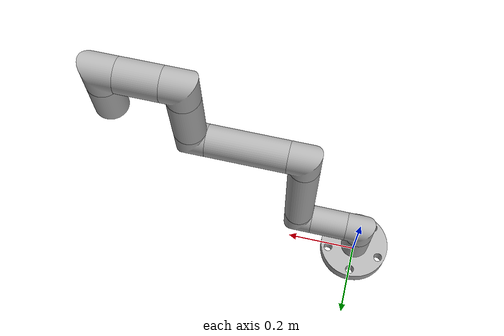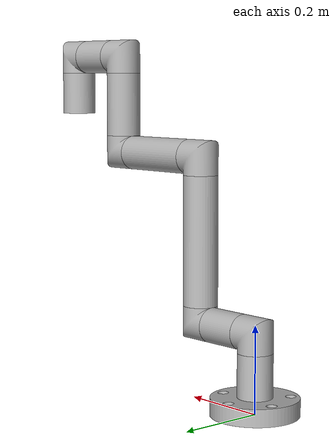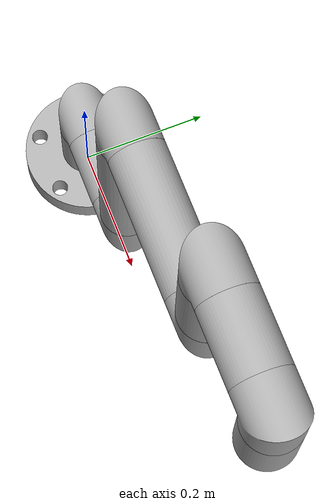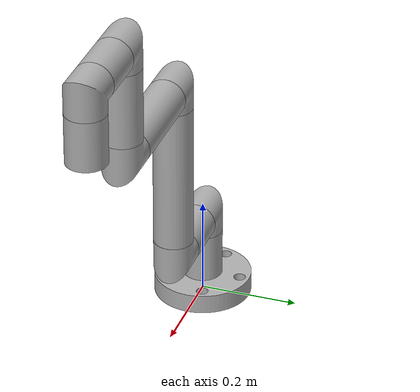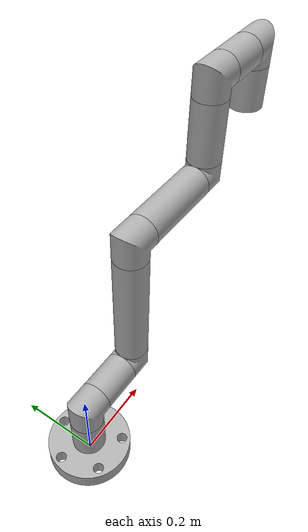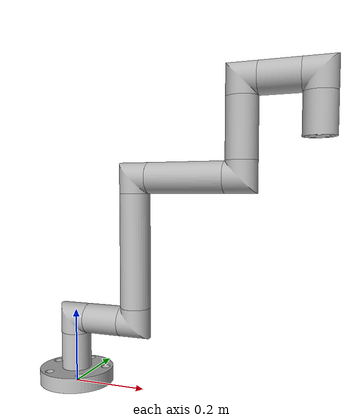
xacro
<?xml version="1.0" ?>
<robot name="Proyecto_robot" xmlns:xacro="http://www.ros.org/wiki/xacro">

<xacro:include filename="$(find Proyecto_robot_description)/urdf/materials.xacro" />
<xacro:include filename="$(find Proyecto_robot_description)/urdf/Proyecto_robot.trans" />
<xacro:include filename="$(find Proyecto_robot_description)/urdf/Proyecto_robot.gazebo" />
  <!-- Used for fixing robot to Gazebo 'base_link' -->
  <link name="world"/>

  <joint name="fixed" type="fixed">
    <parent link="world"/>
    <child link="base_link"/>
  </joint>-->
<link name="base_link">
  <inertial>
    <origin rpy="0 0 0" xyz="0 0 0"/>
    <mass value="7.515592835274655"/>
    <inertia ixx="0.022536" ixy="-0.0" ixz="0.0" iyy="0.022536" iyz="-0.0" izz="0.043068"/>
  </inertial>
  <visual>
    <origin rpy="0 0 0" xyz="0 0 0"/>
    <geometry>
      <mesh filename="package://Proyecto_robot_description/meshes/base_link.stl" scale="0.001 0.001 0.001"/>
    </geometry>
    <material name="silver"/>
  </visual>
  <collision>
    <origin rpy="0 0 0" xyz="0 0 0"/>
    <geometry>
      <mesh filename="package://Proyecto_robot_description/meshes/base_link.stl" scale="0.001 0.001 0.001"/>
    </geometry>
  </collision>
</link>

<link name="Component14_1">
  <inertial>
    <origin rpy="0 0 0" xyz="6.822320486321587e-13 -3.193731681911223e-11 -0.04919483100108901"/>
    <mass value="3.876479897603745"/>
    <inertia ixx="0.004691" ixy="-0.0" ixz="-0.0" iyy="0.004691" iyz="0.0" izz="0.003092"/>
  </inertial>
  <visual>
    <origin rpy="0 0 0" xyz="-0.64 0.0 -0.75"/>
    <geometry>
      <mesh filename="package://Proyecto_robot_description/meshes/Component14_1.stl" scale="0.001 0.001 0.001"/>
    </geometry>
    <material name="silver"/>
  </visual>
  <collision>
    <origin rpy="0 0 0" xyz="-0.64 0.0 -0.75"/>
    <geometry>
      <mesh filename="package://Proyecto_robot_description/meshes/Component14_1.stl" scale="0.001 0.001 0.001"/>
    </geometry>
  </collision>
</link>

<link name="Component13_1">
  <inertial>
    <origin rpy="0 0 0" xyz="0.03749999998098341 -1.2166751014171874e-10 -0.002499999953929466"/>
    <mass value="3.156672298327024"/>
    <inertia ixx="0.002716" ixy="-0.0" ixz="2e-05" iyy="0.002907" iyz="0.0" izz="0.002716"/>
  </inertial>
  <visual>
    <origin rpy="0 0 0" xyz="-0.6 0.0 -0.79"/>
    <geometry>
      <mesh filename="package://Proyecto_robot_description/meshes/Component13_1.stl" scale="0.001 0.001 0.001"/>
    </geometry>
    <material name="silver"/>
  </visual>
  <collision>
    <origin rpy="0 0 0" xyz="-0.6 0.0 -0.79"/>
    <geometry>
      <mesh filename="package://Proyecto_robot_description/meshes/Component13_1.stl" scale="0.001 0.001 0.001"/>
    </geometry>
  </collision>
</link>

<link name="Component12_1">
  <inertial>
    <origin rpy="0 0 0" xyz="0.04999999998096316 -1.2203037810843445e-10 4.535805064875831e-11"/>
    <mass value="3.9458403729087896"/>
    <inertia ixx="0.003157" ixy="0.0" ixz="-0.0" iyy="0.004867" iyz="0.0" izz="0.004867"/>
  </inertial>
  <visual>
    <origin rpy="0 0 0" xyz="-0.5 0.0 -0.79"/>
    <geometry>
      <mesh filename="package://Proyecto_robot_description/meshes/Component12_1.stl" scale="0.001 0.001 0.001"/>
    </geometry>
    <material name="silver"/>
  </visual>
  <collision>
    <origin rpy="0 0 0" xyz="-0.5 0.0 -0.79"/>
    <geometry>
      <mesh filename="package://Proyecto_robot_description/meshes/Component12_1.stl" scale="0.001 0.001 0.001"/>
    </geometry>
  </collision>
</link>

<link name="Component11_1">
  <inertial>
    <origin rpy="0 0 0" xyz="0.002499999980983769 -1.2166705952994858e-10 0.037500000044644266"/>
    <mass value="3.156672298327024"/>
    <inertia ixx="0.002716" ixy="0.0" ixz="-2e-05" iyy="0.002907" iyz="0.0" izz="0.002716"/>
  </inertial>
  <visual>
    <origin rpy="0 0 0" xyz="-0.46 0.0 -0.75"/>
    <geometry>
      <mesh filename="package://Proyecto_robot_description/meshes/Component11_1.stl" scale="0.001 0.001 0.001"/>
    </geometry>
    <material name="silver"/>
  </visual>
  <collision>
    <origin rpy="0 0 0" xyz="-0.46 0.0 -0.75"/>
    <geometry>
      <mesh filename="package://Proyecto_robot_description/meshes/Component11_1.stl" scale="0.001 0.001 0.001"/>
    </geometry>
  </collision>
</link>

<link name="Component10_1">
  <inertial>
    <origin rpy="0 0 0" xyz="-1.8099299836649152e-11 -1.0531080358510585e-10 0.07500000004462448"/>
    <mass value="5.91876055936317"/>
    <inertia ixx="0.013465" ixy="0.0" ixz="0.0" iyy="0.013465" iyz="0.0" izz="0.004735"/>
  </inertial>
  <visual>
    <origin rpy="0 0 0" xyz="-0.46 0.0 -0.6"/>
    <geometry>
      <mesh filename="package://Proyecto_robot_description/meshes/Component10_1.stl" scale="0.001 0.001 0.001"/>
    </geometry>
    <material name="silver"/>
  </visual>
  <collision>
    <origin rpy="0 0 0" xyz="-0.46 0.0 -0.6"/>
    <geometry>
      <mesh filename="package://Proyecto_robot_description/meshes/Component10_1.stl" scale="0.001 0.001 0.001"/>
    </geometry>
  </collision>
</link>

<link name="Component9_1">
  <inertial>
    <origin rpy="0 0 0" xyz="0.037499999982817334 -8.895458316739984e-11 0.002500000044603823"/>
    <mass value="3.156672298327025"/>
    <inertia ixx="0.002716" ixy="0.0" ixz="-2e-05" iyy="0.002907" iyz="0.0" izz="0.002716"/>
  </inertial>
  <visual>
    <origin rpy="0 0 0" xyz="-0.42 0.0 -0.56"/>
    <geometry>
      <mesh filename="package://Proyecto_robot_description/meshes/Component9_1.stl" scale="0.001 0.001 0.001"/>
    </geometry>
    <material name="silver"/>
  </visual>
  <collision>
    <origin rpy="0 0 0" xyz="-0.42 0.0 -0.56"/>
    <geometry>
      <mesh filename="package://Proyecto_robot_description/meshes/Component9_1.stl" scale="0.001 0.001 0.001"/>
    </geometry>
  </collision>
</link>

<link name="Component8_1">
  <inertial>
    <origin rpy="0 0 0" xyz="0.09999999998283796 -8.859130186327942e-11 4.3483106004771344e-11"/>
    <mass value="7.891680745817552"/>
    <inertia ixx="0.006313" ixy="-0.0" ixz="-0.0" iyy="0.029462" iyz="0.0" izz="0.029462"/>
  </inertial>
  <visual>
    <origin rpy="0 0 0" xyz="-0.22 0.0 -0.56"/>
    <geometry>
      <mesh filename="package://Proyecto_robot_description/meshes/Component8_1.stl" scale="0.001 0.001 0.001"/>
    </geometry>
    <material name="silver"/>
  </visual>
  <collision>
    <origin rpy="0 0 0" xyz="-0.22 0.0 -0.56"/>
    <geometry>
      <mesh filename="package://Proyecto_robot_description/meshes/Component8_1.stl" scale="0.001 0.001 0.001"/>
    </geometry>
  </collision>
</link>

<link name="Component7_1">
  <inertial>
    <origin rpy="0 0 0" xyz="0.002499999982223222 -8.829804254666008e-11 0.0375000000425737"/>
    <mass value="3.1566722983270235"/>
    <inertia ixx="0.002716" ixy="0.0" ixz="-2e-05" iyy="0.002907" iyz="0.0" izz="0.002716"/>
  </inertial>
  <visual>
    <origin rpy="0 0 0" xyz="-0.18 -0.0 -0.52"/>
    <geometry>
      <mesh filename="package://Proyecto_robot_description/meshes/Component7_1.stl" scale="0.001 0.001 0.001"/>
    </geometry>
    <material name="silver"/>
  </visual>
  <collision>
    <origin rpy="0 0 0" xyz="-0.18 -0.0 -0.52"/>
    <geometry>
      <mesh filename="package://Proyecto_robot_description/meshes/Component7_1.stl" scale="0.001 0.001 0.001"/>
    </geometry>
  </collision>
</link>

<link name="Component6_1">
  <inertial>
    <origin rpy="0 0 0" xyz="1.1070228067566745e-11 2.6966852524683497e-11 0.14999999999446464"/>
    <mass value="11.837521118726338"/>
    <inertia ixx="0.093516" ixy="0.0" ixz="-0.0" iyy="0.093516" iyz="-0.0" izz="0.00947"/>
  </inertial>
  <visual>
    <origin rpy="0 0 0" xyz="-0.18 -0.0 -0.22"/>
    <geometry>
      <mesh filename="package://Proyecto_robot_description/meshes/Component6_1.stl" scale="0.001 0.001 0.001"/>
    </geometry>
    <material name="silver"/>
  </visual>
  <collision>
    <origin rpy="0 0 0" xyz="-0.18 -0.0 -0.22"/>
    <geometry>
      <mesh filename="package://Proyecto_robot_description/meshes/Component6_1.stl" scale="0.001 0.001 0.001"/>
    </geometry>
  </collision>
</link>

<link name="Component5_1">
  <inertial>
    <origin rpy="0 0 0" xyz="0.03750000000530407 3.5477430809969356e-13 0.0024999999945416185"/>
    <mass value="3.156672298327024"/>
    <inertia ixx="0.002716" ixy="-0.0" ixz="-2e-05" iyy="0.002907" iyz="-0.0" izz="0.002716"/>
  </inertial>
  <visual>
    <origin rpy="0 0 0" xyz="-0.14 0.0 -0.18"/>
    <geometry>
      <mesh filename="package://Proyecto_robot_description/meshes/Component5_1.stl" scale="0.001 0.001 0.001"/>
    </geometry>
    <material name="silver"/>
  </visual>
  <collision>
    <origin rpy="0 0 0" xyz="-0.14 0.0 -0.18"/>
    <geometry>
      <mesh filename="package://Proyecto_robot_description/meshes/Component5_1.stl" scale="0.001 0.001 0.001"/>
    </geometry>
  </collision>
</link>

<link name="Component4_1">
  <inertial>
    <origin rpy="0 0 0" xyz="0.050000000005227425 -6.164420655582977e-17 -2.7676749780880527e-12"/>
    <mass value="3.94584037290878"/>
    <inertia ixx="0.003157" ixy="-0.0" ixz="0.0" iyy="0.004867" iyz="0.0" izz="0.004867"/>
  </inertial>
  <visual>
    <origin rpy="0 0 0" xyz="-0.04 0.0 -0.18"/>
    <geometry>
      <mesh filename="package://Proyecto_robot_description/meshes/Component4_1.stl" scale="0.001 0.001 0.001"/>
    </geometry>
    <material name="silver"/>
  </visual>
  <collision>
    <origin rpy="0 0 0" xyz="-0.04 0.0 -0.18"/>
    <geometry>
      <mesh filename="package://Proyecto_robot_description/meshes/Component4_1.stl" scale="0.001 0.001 0.001"/>
    </geometry>
  </collision>
</link>

<link name="Component3_1">
  <inertial>
    <origin rpy="0 0 0" xyz="0.0024999999999996284 -3.5490384150642065e-13 0.03749999999999987"/>
    <mass value="3.156672298327024"/>
    <inertia ixx="0.002716" ixy="-0.0" ixz="-2e-05" iyy="0.002907" iyz="-0.0" izz="0.002716"/>
  </inertial>
  <visual>
    <origin rpy="0 0 0" xyz="-0.0 -0.0 -0.14"/>
    <geometry>
      <mesh filename="package://Proyecto_robot_description/meshes/Component3_1.stl" scale="0.001 0.001 0.001"/>
    </geometry>
    <material name="silver"/>
  </visual>
  <collision>
    <origin rpy="0 0 0" xyz="-0.0 -0.0 -0.14"/>
    <geometry>
      <mesh filename="package://Proyecto_robot_description/meshes/Component3_1.stl" scale="0.001 0.001 0.001"/>
    </geometry>
  </collision>
</link>

<link name="Component2_1">
  <inertial>
    <origin rpy="0 0 0" xyz="0.0 0.0 0.07"/>
    <mass value="5.524176522072291"/>
    <inertia ixx="0.011232" ixy="0.0" ixz="0.0" iyy="0.011232" iyz="0.0" izz="0.004419"/>
  </inertial>
  <visual>
    <origin rpy="0 0 0" xyz="-0.0 -0.0 -0.0"/>
    <geometry>
      <mesh filename="package://Proyecto_robot_description/meshes/Component2_1.stl" scale="0.001 0.001 0.001"/>
    </geometry>
    <material name="silver"/>
  </visual>
  <collision>
    <origin rpy="0 0 0" xyz="-0.0 -0.0 -0.0"/>
    <geometry>
      <mesh filename="package://Proyecto_robot_description/meshes/Component2_1.stl" scale="0.001 0.001 0.001"/>
    </geometry>
  </collision>
</link>

<joint name="Rev1" type="continuous">
  <origin rpy="0 0 0" xyz="0.04 0.0 -0.04"/>
  <parent link="Component13_1"/>
  <child link="Component14_1"/>
  <axis xyz="0.0 0.0 -1.0"/>
  <dynamics damping="50" friction="1"/>
</joint>

<joint name="Rigid2" type="fixed">
  <origin rpy="0 0 0" xyz="0.1 0.0 0.0"/>
  <parent link="Component12_1"/>
  <child link="Component13_1"/>
</joint>

<joint name="Rev3" type="continuous">
  <origin rpy="0 0 0" xyz="0.04 0.0 0.04"/>
  <parent link="Component11_1"/>
  <child link="Component12_1"/>
  <axis xyz="1.0 0.0 0.0"/>
  <dynamics damping="50" friction="1"/>
</joint>

<joint name="Rigid4" type="fixed">
  <origin rpy="0 0 0" xyz="0.0 0.0 0.15"/>
  <parent link="Component10_1"/>
  <child link="Component11_1"/>
</joint>

<joint name="Rev5" type="continuous">
  <origin rpy="0 0 0" xyz="0.04 0.0 0.04"/>
  <parent link="Component9_1"/>
  <child link="Component10_1"/>
  <axis xyz="-0.0 -0.0 1.0"/>
  <dynamics damping="50" friction="1"/>
</joint>

<joint name="Rigid6" type="fixed">
  <origin rpy="0 0 0" xyz="0.2 0.0 0.0"/>
  <parent link="Component8_1"/>
  <child link="Component9_1"/>
</joint>

<joint name="Rev7" type="continuous">
  <origin rpy="0 0 0" xyz="0.04 -0.0 0.04"/>
  <parent link="Component7_1"/>
  <child link="Component8_1"/>
  <axis xyz="1.0 0.0 0.0"/>
  <dynamics damping="50" friction="1"/>
</joint>

<joint name="Rigid8" type="fixed">
  <origin rpy="0 0 0" xyz="0.0 0.0 0.3"/>
  <parent link="Component6_1"/>
  <child link="Component7_1"/>
</joint>

<joint name="Rev9" type="continuous">
  <origin rpy="0 0 0" xyz="0.04 0.0 0.04"/>
  <parent link="Component5_1"/>
  <child link="Component6_1"/>
  <axis xyz="0.0 0.0 1.0"/>
  <dynamics damping="50" friction="1"/>
</joint>

<joint name="Rigid10" type="fixed">
  <origin rpy="0 0 0" xyz="0.1 0.0 0.0"/>
  <parent link="Component4_1"/>
  <child link="Component5_1"/>
</joint>

<joint name="Rev11" type="continuous">
  <origin rpy="0 0 0" xyz="0.04 -0.0 0.04"/>
  <parent link="Component3_1"/>
  <child link="Component4_1"/>
  <axis xyz="1.0 0.0 0.0"/>
  <dynamics damping="50" friction="1"/>
</joint>

<joint name="Rigid14" type="fixed">
  <origin rpy="0 0 0" xyz="0.0 0.0 0.14"/>
  <parent link="Component2_1"/>
  <child link="Component3_1"/>
</joint>

<joint name="Rev15" type="continuous">
  <origin rpy="0 0 0" xyz="0.0 0.0 0.0"/>
  <parent link="base_link"/>
  <child link="Component2_1"/>
  <axis xyz="0.0 0.0 1.0"/>
  <dynamics damping="50" friction="1"/>
</joint>

</robot>

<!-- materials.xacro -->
<robot name="Proyecto_robot" xmlns:xacro="http://www.ros.org/wiki/xacro" >

<material name="silver">
  <color rgba="0.700 0.700 0.700 1.000"/>
</material>

</robot>

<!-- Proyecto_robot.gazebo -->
<robot name="Proyecto_robot" xmlns:xacro="http://www.ros.org/wiki/xacro" >

<xacro:property name="body_color" value="Gazebo/Silver" />

<gazebo>
  <plugin filename="libgazebo_ros_control.so" name="control"/>
</gazebo>
<gazebo reference="base_link">
  <material>${body_color}</material>
  <mu1>0.2</mu1>
  <mu2>0.2</mu2>
  <selfCollide>true</selfCollide>
  <gravity>true</gravity>
</gazebo>

<gazebo reference="Component14_1">
  <material>${body_color}</material>
  <mu1>0.2</mu1>
  <mu2>0.2</mu2>
  <selfCollide>true</selfCollide>
</gazebo>

<gazebo reference="Component13_1">
  <material>${body_color}</material>
  <mu1>0.2</mu1>
  <mu2>0.2</mu2>
  <selfCollide>true</selfCollide>
</gazebo>

<gazebo reference="Component12_1">
  <material>${body_color}</material>
  <mu1>0.2</mu1>
  <mu2>0.2</mu2>
  <selfCollide>true</selfCollide>
</gazebo>

<gazebo reference="Component11_1">
  <material>${body_color}</material>
  <mu1>0.2</mu1>
  <mu2>0.2</mu2>
  <selfCollide>true</selfCollide>
</gazebo>

<gazebo reference="Component10_1">
  <material>${body_color}</material>
  <mu1>0.2</mu1>
  <mu2>0.2</mu2>
  <selfCollide>true</selfCollide>
</gazebo>

<gazebo reference="Component9_1">
  <material>${body_color}</material>
  <mu1>0.2</mu1>
  <mu2>0.2</mu2>
  <selfCollide>true</selfCollide>
</gazebo>

<gazebo reference="Component8_1">
  <material>${body_color}</material>
  <mu1>0.2</mu1>
  <mu2>0.2</mu2>
  <selfCollide>true</selfCollide>
</gazebo>

<gazebo reference="Component7_1">
  <material>${body_color}</material>
  <mu1>0.2</mu1>
  <mu2>0.2</mu2>
  <selfCollide>true</selfCollide>
</gazebo>

<gazebo reference="Component6_1">
  <material>${body_color}</material>
  <mu1>0.2</mu1>
  <mu2>0.2</mu2>
  <selfCollide>true</selfCollide>
</gazebo>

<gazebo reference="Component5_1">
  <material>${body_color}</material>
  <mu1>0.2</mu1>
  <mu2>0.2</mu2>
  <selfCollide>true</selfCollide>
</gazebo>

<gazebo reference="Component4_1">
  <material>${body_color}</material>
  <mu1>0.2</mu1>
  <mu2>0.2</mu2>
  <selfCollide>true</selfCollide>
</gazebo>

<gazebo reference="Component3_1">
  <material>${body_color}</material>
  <mu1>0.2</mu1>
  <mu2>0.2</mu2>
  <selfCollide>true</selfCollide>
</gazebo>

<gazebo reference="Component2_1">
  <material>${body_color}</material>
  <mu1>0.2</mu1>
  <mu2>0.2</mu2>
  <selfCollide>true</selfCollide>
</gazebo>

</robot>
